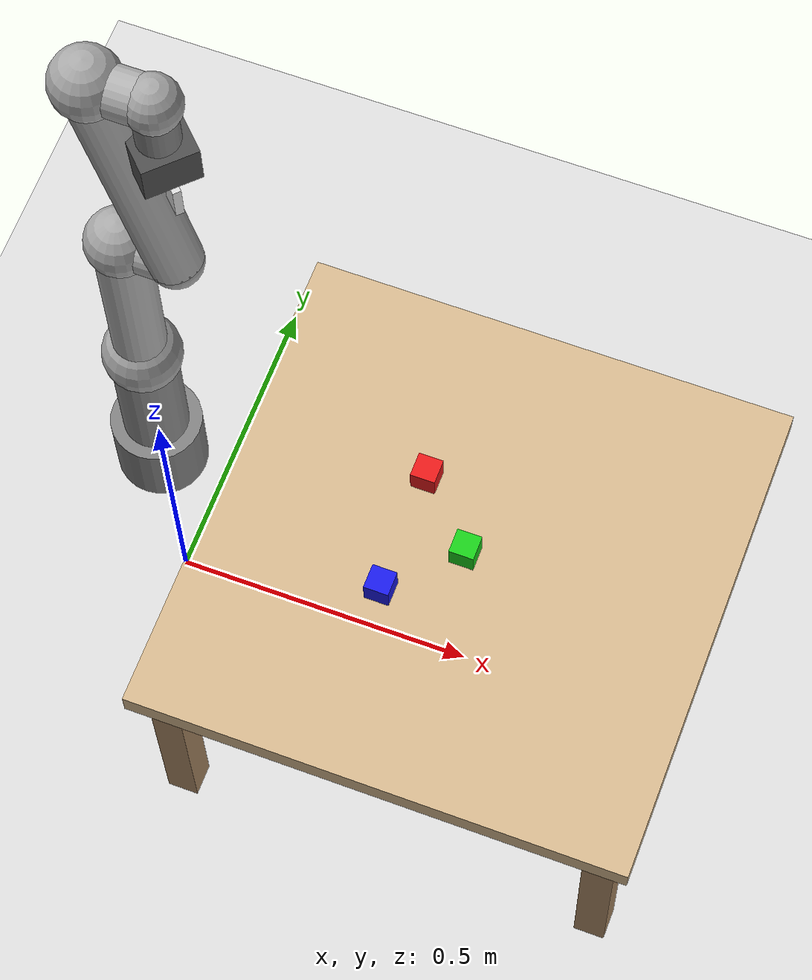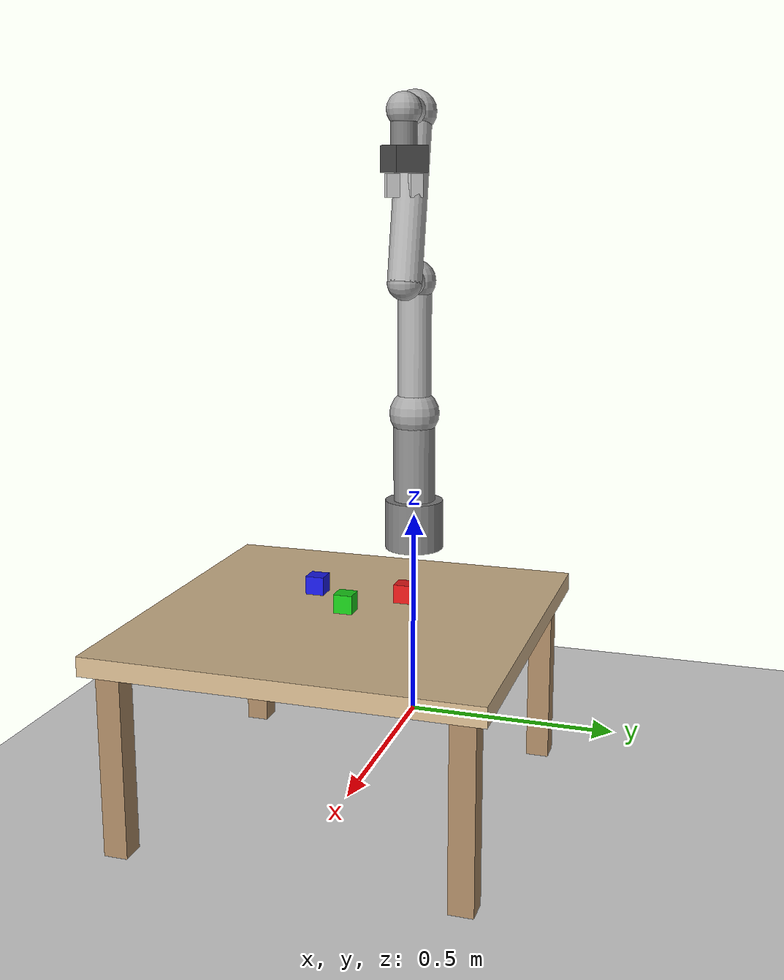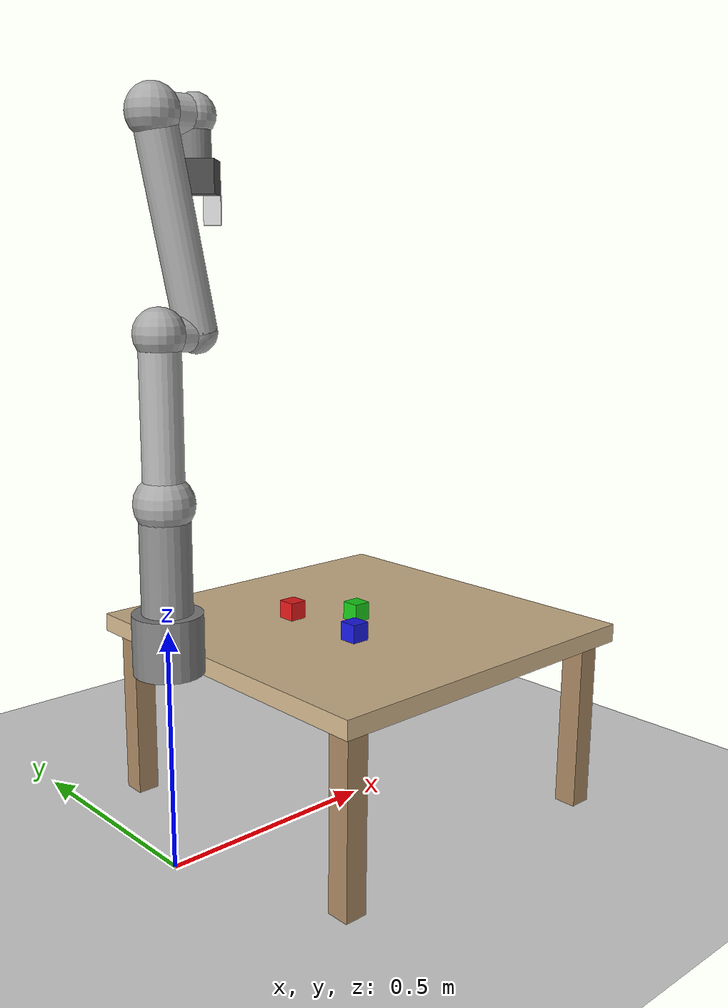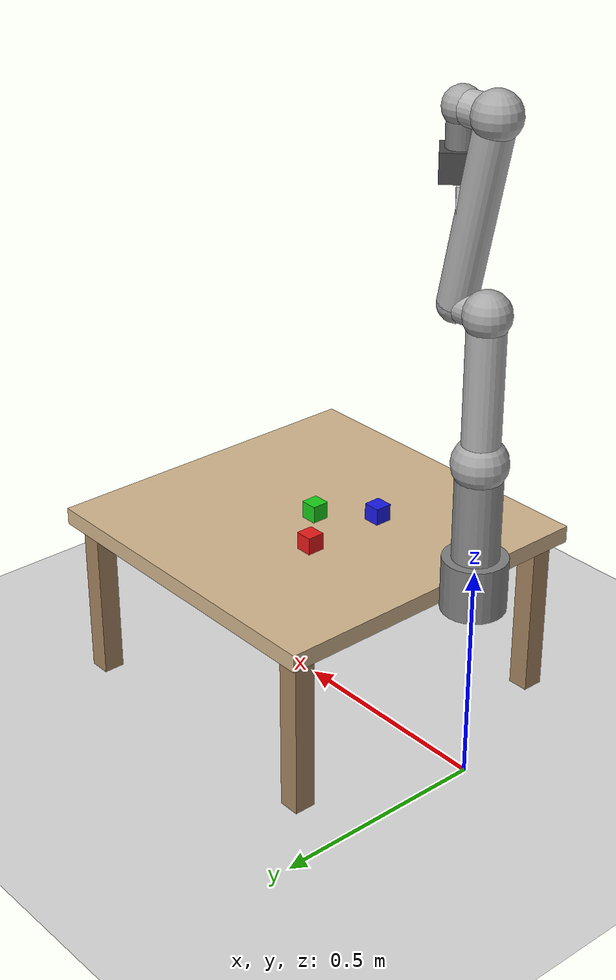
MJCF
<mujoco model="nl2robot_scene">
  <!--
    angle=radian: joint range values in radians.
    NOTE: geom euler attributes are ALWAYS degrees in MuJoCo regardless of this setting.
  -->
  <compiler angle="radian"/>
  <option gravity="0 0 -9.81" timestep="0.001"
          iterations="50" noslip_iterations="10"
          viscosity="0.05"/>

  <default>
    <geom contype="1" conaffinity="1" condim="3" friction="1 0.005 0.0001"/>
    <joint damping="1.0"/>
  </default>

  <worldbody>

    <!-- Ground plane -->
    <geom name="floor" type="plane" size="2 2 0.1" rgba="0.85 0.85 0.85 1"
          contype="1" conaffinity="1"/>

    <!-- Lights -->
    <light name="top"  pos="0.5 0 2.0"   dir="0 0 -1"       diffuse="0.8 0.8 0.8" specular="0.2 0.2 0.2" directional="true"/>
    <light name="side" pos="1.0 1.0 1.5" dir="-0.5 -0.5 -1" diffuse="0.4 0.4 0.4" directional="true"/>

    <body name="panda_base" pos="0 0 0.42">
      <geom name="base_geom" type="cylinder"
            fromto="0 0 0 0 0 0.12" size="0.07"
            rgba="0.5 0.5 0.5 1" mass="4" contype="0" conaffinity="0"/>
      <geom name="base_column" type="cylinder"
            fromto="0 0 0.12 0 0 0.333" size="0.05"
            rgba="0.55 0.55 0.55 1" mass="2" contype="0" conaffinity="0"/>

      <!-- link1: d1=0.333 above base; joint1 rotates around Z -->
      <body name="link1" pos="0 0 0.333">
        <joint name="joint1" type="hinge" axis="0 0 1"
               range="-2.8973 2.8973" damping="50"/>
        <!--
          Sphere connector at joint1/joint2 origin.
          Radius 0.06 encloses the base_column end (r=0.05) and the
          upper-arm cylinder end (r=0.04) with no visible seam.
        -->
        <geom type="sphere" size="0.06" pos="0 0 0"
              rgba="0.65 0.65 0.65 1" mass="4" contype="0" conaffinity="0"/>

        <!-- link2: quat=-90°X  →  local Z becomes world Y  →  joint2 is shoulder bend -->
        <body name="link2" pos="0 0 0" quat="1 -1 0 0">
          <joint name="joint2" type="hinge" axis="0 0 1"
                 range="-1.4 1.7628" damping="50"/>
          <geom type="cylinder"
                fromto="0 0 0 0 -0.316 0" size="0.04"
                rgba="0.7 0.7 0.7 1" mass="4" contype="0" conaffinity="0"/>

          <!-- link3: d3=0.316 along link2 local -Y; quat restores frame to world-aligned -->
          <body name="link3" pos="0 -0.316 0" quat="1 1 0 0">
            <joint name="joint3" type="hinge" axis="0 0 1"
                   range="-2.8973 2.8973" damping="20"/>
            <!--
              Elbow sphere at joint3 origin.
              Radius 0.05 encloses the upper-arm end (r=0.04) and
              forearm-stub end (r=0.035) — no visible seam at elbow.
            -->
            <geom type="sphere" size="0.05" pos="0 0 0"
                  rgba="0.65 0.65 0.65 1" mass="3" contype="0" conaffinity="0"/>
            <!--
              Forearm stub: fromto spans from joint3 origin (0,0,0)
              to link4 origin (0.0825,0,0) along local +X.
              Radius 0.035 matches the diagonal arm below.
            -->
            <geom type="cylinder"
                  fromto="0 0 0 0.0825 0 0" size="0.035"
                  rgba="0.7 0.7 0.7 1" mass="0.5" contype="0" conaffinity="0"/>

            <!-- link4: a4=0.0825 along +X; quat rotates frame again -->
            <body name="link4" pos="0.0825 0 0" quat="1 1 0 0">
              <joint name="joint4" type="hinge" axis="0 0 1"
                     range="-3.0718 -0.0698" damping="20"/>
              <!--
                Sphere connector at joint4 origin fills the gap between
                the forearm stub end (r=0.035) and the diagonal arm (r=0.04).
              -->
              <geom type="sphere" size="0.04" pos="0 0 0"
                    rgba="0.65 0.65 0.65 1" mass="0" contype="0" conaffinity="0"/>
              <geom type="cylinder"
                    fromto="0 0 0 -0.0825 0.384 0" size="0.04"
                    rgba="0.7 0.7 0.7 1" mass="3" contype="0" conaffinity="0"/>

              <!-- link5: a5=-0.0825, d5=0.384 expressed in link4 local as [-0.0825,0.384,0] -->
              <body name="link5" pos="-0.0825 0.384 0" quat="1 -1 0 0">
                <joint name="joint5" type="hinge" axis="0 0 1"
                       range="-2.8973 2.8973" damping="10"/>
                <geom type="sphere" size="0.05" pos="0 0 0"
                      rgba="0.65 0.65 0.65 1" mass="2" contype="0" conaffinity="0"/>

                <!-- link6: same position, quat rotates frame -->
                <body name="link6" pos="0 0 0" quat="1 1 0 0">
                  <joint name="joint6" type="hinge" axis="0 0 1"
                         range="-0.0175 3.7525" damping="10"/>
                  <!--
                    Wrist cylinder: fromto spans from joint6 origin (0,0,0)
                    to link7 origin (0.088,0,0) along local +X.
                  -->
                  <geom type="cylinder"
                        fromto="0 0 0 0.088 0 0" size="0.035"
                        rgba="0.7 0.7 0.7 1" mass="2" contype="0" conaffinity="0"/>

                  <!-- link7: a7=0.088 along +X -->
                  <body name="link7" pos="0.088 0 0" quat="1 1 0 0">
                    <joint name="joint7" type="hinge" axis="0 0 1"
                           range="-2.8973 2.8973" damping="5"/>
                    <geom type="sphere" size="0.04" pos="0 0 0"
                          rgba="0.65 0.65 0.65 1" mass="0" contype="0" conaffinity="0"/>
                    <!--
                      Final wrist tube: fromto spans from joint7 origin (0,0,0)
                      to hand origin (0,0,0.107) along local +Z.
                    -->
                    <geom type="cylinder"
                          fromto="0 0 0 0 0 0.107" size="0.03"
                          rgba="0.5 0.5 0.5 1" mass="1" contype="0" conaffinity="0"/>

                    <!-- hand: d_hand=0.107; quat=-45° around Z (from reference) -->
                    <body name="hand" pos="0 0 0.107" quat="0.9238795 0 0 -0.3826834">
                      <!-- Palm: phantom so it doesn't push blocks on approach -->
                      <geom name="hand_geom" type="box" size="0.04 0.04 0.03"
                            rgba="0.3 0.3 0.3 1" mass="0.5"
                            contype="0" conaffinity="0"/>

                      <body name="left_finger" pos="0 0.030 0.058">
                        <joint name="finger_joint1" type="slide"
                               axis="0 1 0" range="0 0.04" damping="10"/>
                        <geom type="box" size="0.006 0.016 0.026"
                              rgba="0.85 0.85 0.85 1" mass="0.1"/>
                      </body>

                      <body name="right_finger" pos="0 -0.030 0.058">
                        <joint name="finger_joint2" type="slide"
                               axis="0 -1 0" range="0 0.04" damping="10"/>
                        <geom type="box" size="0.006 0.016 0.026"
                              rgba="0.85 0.85 0.85 1" mass="0.1"/>
                      </body>

                    </body><!-- hand -->
                  </body><!-- link7 -->
                </body><!-- link6 -->
              </body><!-- link5 -->
            </body><!-- link4 -->
          </body><!-- link3 -->
        </body><!-- link2 -->
      </body><!-- link1 -->
    </body><!-- panda_base -->

    <!-- ================================================================
         TABLE  (surface top at z = 0.4 + 0.02 = 0.42)
    ================================================================ -->
    <body name="table" pos="0.5 0 0.4">
      <geom name="table_top" type="box" size="0.4 0.4 0.02"
            rgba="0.82 0.71 0.55 1" mass="10" contype="2" conaffinity="2"/>
      <geom name="leg1" type="box" size="0.025 0.025 0.2" pos=" 0.35  0.35 -0.22"
            rgba="0.65 0.52 0.38 1" mass="1" contype="2" conaffinity="2"/>
      <geom name="leg2" type="box" size="0.025 0.025 0.2" pos="-0.35  0.35 -0.22"
            rgba="0.65 0.52 0.38 1" mass="1" contype="2" conaffinity="2"/>
      <geom name="leg3" type="box" size="0.025 0.025 0.2" pos=" 0.35 -0.35 -0.22"
            rgba="0.65 0.52 0.38 1" mass="1" contype="2" conaffinity="2"/>
      <geom name="leg4" type="box" size="0.025 0.025 0.2" pos="-0.35 -0.35 -0.22"
            rgba="0.65 0.52 0.38 1" mass="1" contype="2" conaffinity="2"/>
    </body>

    <body name="red_block" pos="0.4 0.1 0.44">
      <joint name="red_block_joint" type="free"/>
      <geom name="red_block_geom" type="box" size="0.02 0.02 0.02"
            rgba="0.9 0.1 0.1 1" mass="0.1"
            contype="3" conaffinity="3" condim="4"
            friction="1.0 0.05 0.01"
            solimp="0.99 0.999 0.001" solref="0.004 1"/>
    </body>

    <body name="blue_block" pos="0.4 -0.1 0.44">
      <joint name="blue_block_joint" type="free"/>
      <geom name="blue_block_geom" type="box" size="0.02 0.02 0.02"
            rgba="0.1 0.1 0.9 1" mass="0.1"
            contype="3" conaffinity="3" condim="4"
            friction="1.0 0.05 0.01"
            solimp="0.99 0.999 0.001" solref="0.004 1"/>
    </body>

    <body name="green_block" pos="0.5 0.0 0.44">
      <joint name="green_block_joint" type="free"/>
      <geom name="green_block_geom" type="box" size="0.02 0.02 0.02"
            rgba="0.1 0.8 0.1 1" mass="0.1"
            contype="3" conaffinity="3" condim="4"
            friction="1.0 0.05 0.01"
            solimp="0.99 0.999 0.001" solref="0.004 1"/>
    </body>

  </worldbody>

  <visual>
    <global fovy="45"/>
    <headlight ambient="0.4 0.4 0.4" diffuse="0.6 0.6 0.6" specular="0.0 0.0 0.0"/>
  </visual>

  <statistic center="0.3 0 0.7" extent="1.4"/>

  <actuator>
    <motor name="act_joint1"  joint="joint1"        gear="87" ctrllimited="true" ctrlrange="-87 87"/>
    <motor name="act_joint2"  joint="joint2"        gear="87" ctrllimited="true" ctrlrange="-87 87"/>
    <motor name="act_joint3"  joint="joint3"        gear="87" ctrllimited="true" ctrlrange="-87 87"/>
    <motor name="act_joint4"  joint="joint4"        gear="87" ctrllimited="true" ctrlrange="-87 87"/>
    <motor name="act_joint5"  joint="joint5"        gear="12" ctrllimited="true" ctrlrange="-12 12"/>
    <motor name="act_joint6"  joint="joint6"        gear="12" ctrllimited="true" ctrlrange="-12 12"/>
    <motor name="act_joint7"  joint="joint7"        gear="12" ctrllimited="true" ctrlrange="-12 12"/>
    <motor name="act_finger1" joint="finger_joint1" gear="20" ctrllimited="true" ctrlrange="0 20"/>
    <motor name="act_finger2" joint="finger_joint2" gear="20" ctrllimited="true" ctrlrange="0 20"/>
  </actuator>

  <keyframe>
    <key name="home"
         qpos="1.9088 -0.274 -1.9756 -2.5453 -0.4954 2.602 1.1471
               0 0
               0.4  0.1 0.44  1 0 0 0
               0.4 -0.1 0.44  1 0 0 0
               0.5  0.0 0.44  1 0 0 0"/>
  </keyframe>

</mujoco>
